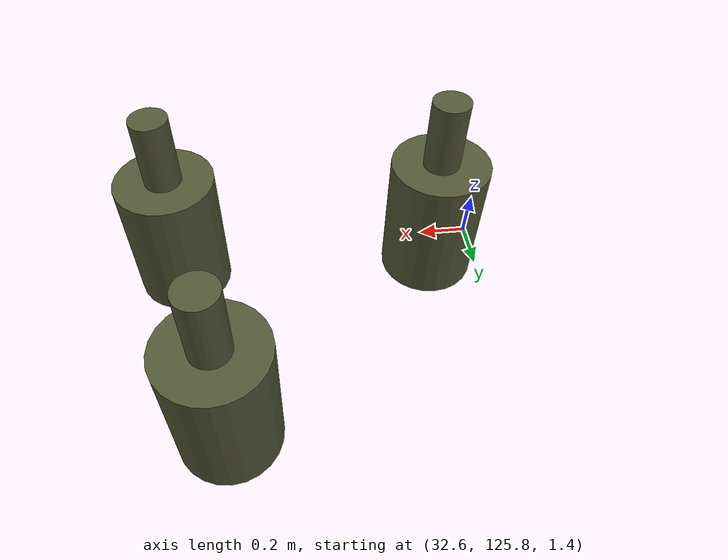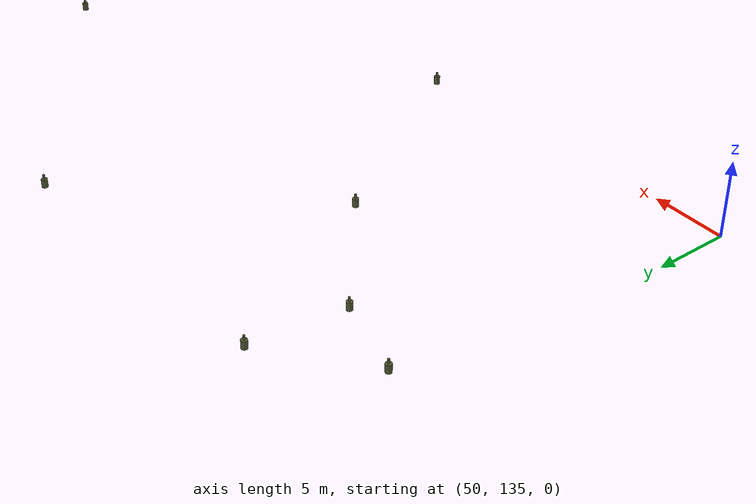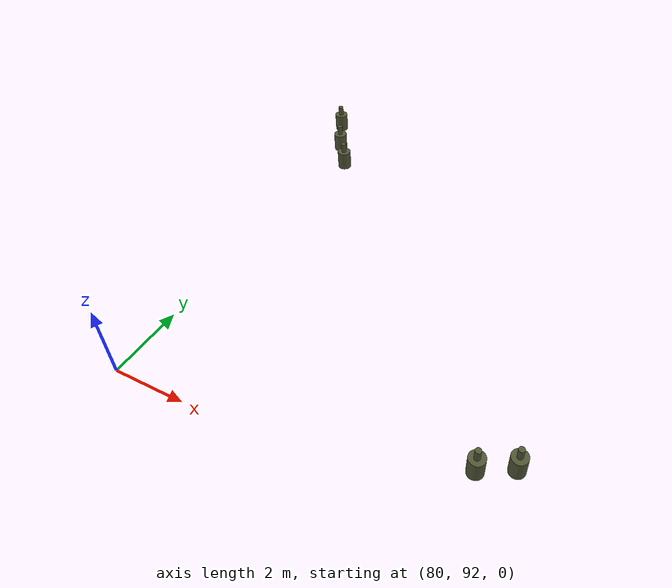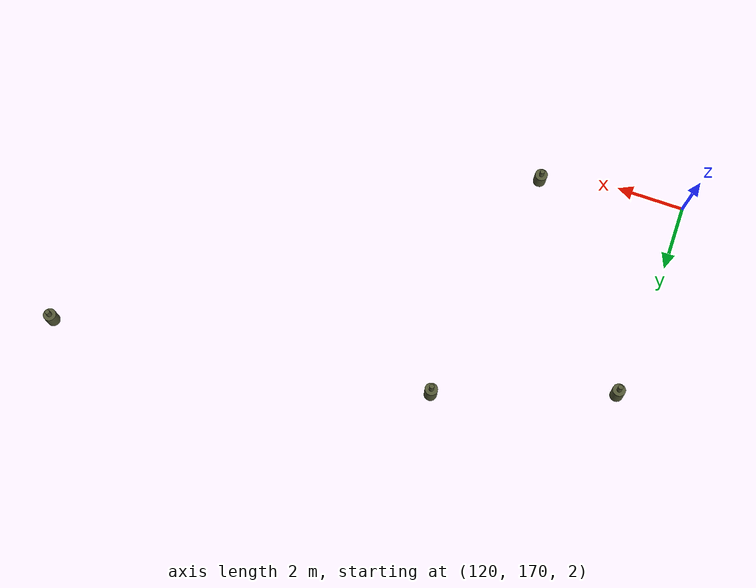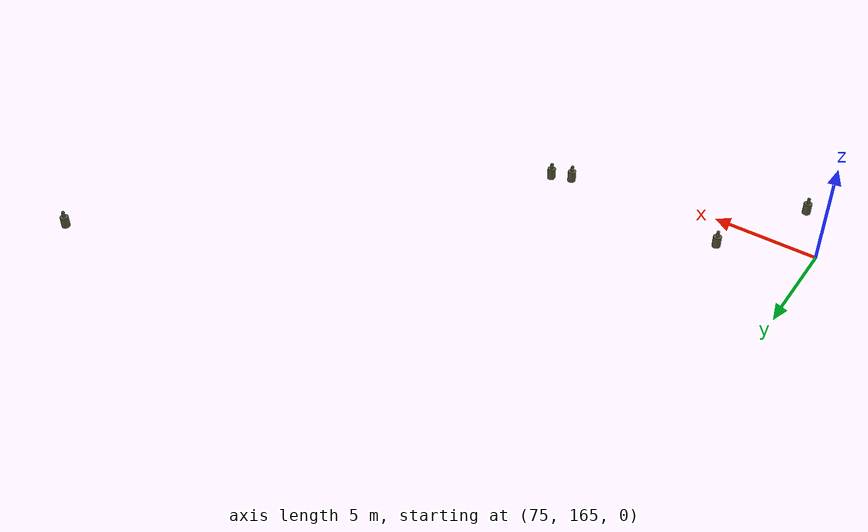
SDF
<sdf version="1.7">
 <world name="default">
  <light name="sun" type="directional">
   <pose>0 0 10 0 -0 0</pose>
   <diffuse>0.8 0.8 0.8 1</diffuse>
   <specular>0.2 0.2 0.2 1</specular>
   <attenuation>
    <range>1000</range>
    <constant>0.9</constant>
    <linear>0.01</linear>
    <quadratic>0.001</quadratic>
   </attenuation>
   <direction>-0.5 0.1 -0.9</direction>
   <spot><inner_angle>0</inner_angle><outer_angle>0</outer_angle><falloff>0</falloff></spot>
  </light>
  <gravity>0 0 -9.8</gravity>
  <magnetic_field>6e-06 2.3e-05 -4.2e-05</magnetic_field>
  <atmosphere type="adiabatic"/>
  <physics type="ode">
   <max_step_size>0.001</max_step_size>
   <real_time_factor>1</real_time_factor>
   <real_time_update_rate>1000</real_time_update_rate>
  </physics>
  <scene><ambient>0.4 0.4 0.4 1</ambient><background>0.7 0.7 0.7 1</background><shadows>0</shadows></scene>
  <spherical_coordinates>
   <surface_model>EARTH_WGS84</surface_model>
   <latitude_deg>46.339159</latitude_deg>
   <longitude_deg>3.433923</longitude_deg>
   <elevation>279.18</elevation>
   <heading_deg>180</heading_deg>
  </spherical_coordinates>
  <model name="obstacle_iso18497">
   <pose>145.018 84.1908 -0.295742 0.011009 0.021463 0.000145</pose>
   <static>1</static>
   <link name="link">
    <visual name="body">
     <pose>0 0 0.265 0 -0 0</pose>
     <geometry><cylinder><radius>0.19</radius><length>0.53</length></cylinder></geometry>
     <material><ambient>0.322 0.341 0.208 1</ambient><diffuse>0.322 0.341 0.208 1</diffuse></material>
    </visual>
    <visual name="head">
     <pose>0 0 0.665 0 -0 0</pose>
     <geometry><cylinder><radius>0.07</radius><length>0.27</length></cylinder></geometry>
     <material><ambient>0.322 0.341 0.208 1</ambient><diffuse>0.322 0.341 0.208 1</diffuse></material>
    </visual>
    <collision name="body_col">
     <pose>0 0 0.265 0 -0 0</pose>
     <geometry><cylinder><radius>0.19</radius><length>0.53</length></cylinder></geometry>
     <surface><contact><collide_without_contact>0</collide_without_contact></contact></surface>
    </collision>
    <collision name="head_col">
     <pose>0 0 0.665 0 -0 0</pose>
     <geometry><cylinder><radius>0.07</radius><length>0.27</length></cylinder></geometry>
     <surface><contact><collide_without_contact>0</collide_without_contact></contact></surface>
    </collision>
    <inertial>
     <mass>40</mass>
     <inertia><ixx>1</ixx><ixy>0</ixy><ixz>0</ixz><iyy>1</iyy><iyz>0</iyz><izz>1</izz></inertia>
    </inertial>
   </link>
  </model>
  <model name="obstacle_iso18497_clone_clone">
   <pose>123.641 80.2199 -0.014469 0.001528 0.043881 0.001737</pose>
   <static>1</static>
   <link name="link">
    <visual name="body">
     <pose>0 0 0.265 0 -0 0</pose>
     <geometry><cylinder><radius>0.19</radius><length>0.53</length></cylinder></geometry>
     <material><ambient>0.322 0.341 0.208 1</ambient><diffuse>0.322 0.341 0.208 1</diffuse></material>
    </visual>
    <visual name="head">
     <pose>0 0 0.665 0 -0 0</pose>
     <geometry><cylinder><radius>0.07</radius><length>0.27</length></cylinder></geometry>
     <material><ambient>0.322 0.341 0.208 1</ambient><diffuse>0.322 0.341 0.208 1</diffuse></material>
    </visual>
    <collision name="body_col">
     <pose>0 0 0.265 0 -0 0</pose>
     <geometry><cylinder><radius>0.19</radius><length>0.53</length></cylinder></geometry>
     <surface><contact><collide_without_contact>0</collide_without_contact></contact></surface>
    </collision>
    <collision name="head_col">
     <pose>0 0 0.665 0 -0 0</pose>
     <geometry><cylinder><radius>0.07</radius><length>0.27</length></cylinder></geometry>
     <surface><contact><collide_without_contact>0</collide_without_contact></contact></surface>
    </collision>
    <inertial>
     <mass>40</mass>
     <inertia><ixx>1</ixx><ixy>0</ixy><ixz>0</ixz><iyy>1</iyy><iyz>0</iyz><izz>1</izz></inertia>
    </inertial>
   </link>
  </model>
  <model name="obstacle_iso18497_clone_clone_0">
   <pose>117.52 93.8356 0.237765 0.012519 0.014392 6.7e-05</pose>
   <static>1</static>
   <link name="link">
    <visual name="body">
     <pose>0 0 0.265 0 -0 0</pose>
     <geometry><cylinder><radius>0.19</radius><length>0.53</length></cylinder></geometry>
     <material><ambient>0.322 0.341 0.208 1</ambient><diffuse>0.322 0.341 0.208 1</diffuse></material>
    </visual>
    <visual name="head">
     <pose>0 0 0.665 0 -0 0</pose>
     <geometry><cylinder><radius>0.07</radius><length>0.27</length></cylinder></geometry>
     <material><ambient>0.322 0.341 0.208 1</ambient><diffuse>0.322 0.341 0.208 1</diffuse></material>
    </visual>
    <collision name="body_col">
     <pose>0 0 0.265 0 -0 0</pose>
     <geometry><cylinder><radius>0.19</radius><length>0.53</length></cylinder></geometry>
     <surface><contact><collide_without_contact>0</collide_without_contact></contact></surface>
    </collision>
    <collision name="head_col">
     <pose>0 0 0.665 0 -0 0</pose>
     <geometry><cylinder><radius>0.07</radius><length>0.27</length></cylinder></geometry>
     <surface><contact><collide_without_contact>0</collide_without_contact></contact></surface>
    </collision>
    <inertial>
     <mass>40</mass>
     <inertia><ixx>1</ixx><ixy>0</ixy><ixz>0</ixz><iyy>1</iyy><iyz>0</iyz><izz>1</izz></inertia>
    </inertial>
   </link>
  </model>
  <model name="obstacle_iso18497_clone_clone_0_clone">
   <pose>111.009 99.3502 0.400379 0.012475 0.014392 9.5e-05</pose>
   <static>1</static>
   <link name="link">
    <visual name="body">
     <pose>0 0 0.265 0 -0 0</pose>
     <geometry><cylinder><radius>0.19</radius><length>0.53</length></cylinder></geometry>
     <material><ambient>0.322 0.341 0.208 1</ambient><diffuse>0.322 0.341 0.208 1</diffuse></material>
    </visual>
    <visual name="head">
     <pose>0 0 0.665 0 -0 0</pose>
     <geometry><cylinder><radius>0.07</radius><length>0.27</length></cylinder></geometry>
     <material><ambient>0.322 0.341 0.208 1</ambient><diffuse>0.322 0.341 0.208 1</diffuse></material>
    </visual>
    <collision name="body_col">
     <pose>0 0 0.265 0 -0 0</pose>
     <geometry><cylinder><radius>0.19</radius><length>0.53</length></cylinder></geometry>
     <surface><contact><collide_without_contact>0</collide_without_contact></contact></surface>
    </collision>
    <collision name="head_col">
     <pose>0 0 0.665 0 -0 0</pose>
     <geometry><cylinder><radius>0.07</radius><length>0.27</length></cylinder></geometry>
     <surface><contact><collide_without_contact>0</collide_without_contact></contact></surface>
    </collision>
    <inertial>
     <mass>40</mass>
     <inertia><ixx>1</ixx><ixy>0</ixy><ixz>0</ixz><iyy>1</iyy><iyz>0</iyz><izz>1</izz></inertia>
    </inertial>
   </link>
  </model>
  <model name="obstacle_iso18497_clone_clone_clone">
   <pose>117.68 71.7303 -0.040745 0.012492 0.014394 0.000324</pose>
   <static>1</static>
   <link name="link">
    <visual name="body">
     <pose>0 0 0.265 0 -0 0</pose>
     <geometry><cylinder><radius>0.19</radius><length>0.53</length></cylinder></geometry>
     <material><ambient>0.322 0.341 0.208 1</ambient><diffuse>0.322 0.341 0.208 1</diffuse></material>
    </visual>
    <visual name="head">
     <pose>0 0 0.665 0 -0 0</pose>
     <geometry><cylinder><radius>0.07</radius><length>0.27</length></cylinder></geometry>
     <material><ambient>0.322 0.341 0.208 1</ambient><diffuse>0.322 0.341 0.208 1</diffuse></material>
    </visual>
    <collision name="body_col">
     <pose>0 0 0.265 0 -0 0</pose>
     <geometry><cylinder><radius>0.19</radius><length>0.53</length></cylinder></geometry>
     <surface><contact><collide_without_contact>0</collide_without_contact></contact></surface>
    </collision>
    <collision name="head_col">
     <pose>0 0 0.665 0 -0 0</pose>
     <geometry><cylinder><radius>0.07</radius><length>0.27</length></cylinder></geometry>
     <surface><contact><collide_without_contact>0</collide_without_contact></contact></surface>
    </collision>
    <inertial>
     <mass>40</mass>
     <inertia><ixx>1</ixx><ixy>0</ixy><ixz>0</ixz><iyy>1</iyy><iyz>0</iyz><izz>1</izz></inertia>
    </inertial>
   </link>
  </model>
  <audio><device>default</device></audio>
  <model name="obstacle_iso18497_1">
   <pose>91.0945 80.0461 0.445781 0.01251 0.014408 9.3e-05</pose>
   <static>1</static>
   <link name="link">
    <visual name="body">
     <pose>0 0 0.265 0 -0 0</pose>
     <geometry><cylinder><radius>0.19</radius><length>0.53</length></cylinder></geometry>
     <material><ambient>0.322 0.341 0.208 1</ambient><diffuse>0.322 0.341 0.208 1</diffuse></material>
    </visual>
    <visual name="head">
     <pose>0 0 0.665 0 -0 0</pose>
     <geometry><cylinder><radius>0.07</radius><length>0.27</length></cylinder></geometry>
     <material><ambient>0.322 0.341 0.208 1</ambient><diffuse>0.322 0.341 0.208 1</diffuse></material>
    </visual>
    <collision name="body_col">
     <pose>0 0 0.265 0 -0 0</pose>
     <geometry><cylinder><radius>0.19</radius><length>0.53</length></cylinder></geometry>
     <surface><contact><collide_without_contact>0</collide_without_contact></contact></surface>
    </collision>
    <collision name="head_col">
     <pose>0 0 0.665 0 -0 0</pose>
     <geometry><cylinder><radius>0.07</radius><length>0.27</length></cylinder></geometry>
     <surface><contact><collide_without_contact>0</collide_without_contact></contact></surface>
    </collision>
    <inertial>
     <mass>40</mass>
     <inertia><ixx>1</ixx><ixy>0</ixy><ixz>0</ixz><iyy>1</iyy><iyz>0</iyz><izz>1</izz></inertia>
    </inertial>
   </link>
  </model>
  <model name="obstacle_iso18497_2">
   <pose>88.7111 93.0475 0.642533 0.012479 0.014374 9.2e-05</pose>
   <static>1</static>
   <link name="link">
    <visual name="body">
     <pose>0 0 0.265 0 -0 0</pose>
     <geometry><cylinder><radius>0.19</radius><length>0.53</length></cylinder></geometry>
     <material><ambient>0.322 0.341 0.208 1</ambient><diffuse>0.322 0.341 0.208 1</diffuse></material>
    </visual>
    <visual name="head">
     <pose>0 0 0.665 0 -0 0</pose>
     <geometry><cylinder><radius>0.07</radius><length>0.27</length></cylinder></geometry>
     <material><ambient>0.322 0.341 0.208 1</ambient><diffuse>0.322 0.341 0.208 1</diffuse></material>
    </visual>
    <collision name="body_col">
     <pose>0 0 0.265 0 -0 0</pose>
     <geometry><cylinder><radius>0.19</radius><length>0.53</length></cylinder></geometry>
     <surface><contact><collide_without_contact>0</collide_without_contact></contact></surface>
    </collision>
    <collision name="head_col">
     <pose>0 0 0.665 0 -0 0</pose>
     <geometry><cylinder><radius>0.07</radius><length>0.27</length></cylinder></geometry>
     <surface><contact><collide_without_contact>0</collide_without_contact></contact></surface>
    </collision>
    <inertial>
     <mass>40</mass>
     <inertia><ixx>1</ixx><ixy>0</ixy><ixz>0</ixz><iyy>1</iyy><iyz>0</iyz><izz>1</izz></inertia>
    </inertial>
   </link>
  </model>
  <model name="obstacle_iso18497_2_clone">
   <pose>89.4425 93.4523 0.637066 0.01248 0.014371 9.2e-05</pose>
   <static>1</static>
   <link name="link">
    <visual name="body">
     <pose>0 0 0.265 0 -0 0</pose>
     <geometry><cylinder><radius>0.19</radius><length>0.53</length></cylinder></geometry>
     <material><ambient>0.322 0.341 0.208 1</ambient><diffuse>0.322 0.341 0.208 1</diffuse></material>
    </visual>
    <visual name="head">
     <pose>0 0 0.665 0 -0 0</pose>
     <geometry><cylinder><radius>0.07</radius><length>0.27</length></cylinder></geometry>
     <material><ambient>0.322 0.341 0.208 1</ambient><diffuse>0.322 0.341 0.208 1</diffuse></material>
    </visual>
    <collision name="body_col">
     <pose>0 0 0.265 0 -0 0</pose>
     <geometry><cylinder><radius>0.19</radius><length>0.53</length></cylinder></geometry>
     <surface><contact><collide_without_contact>0</collide_without_contact></contact></surface>
    </collision>
    <collision name="head_col">
     <pose>0 0 0.665 0 -0 0</pose>
     <geometry><cylinder><radius>0.07</radius><length>0.27</length></cylinder></geometry>
     <surface><contact><collide_without_contact>0</collide_without_contact></contact></surface>
    </collision>
    <inertial>
     <mass>40</mass>
     <inertia><ixx>1</ixx><ixy>0</ixy><ixz>0</ixz><iyy>1</iyy><iyz>0</iyz><izz>1</izz></inertia>
    </inertial>
   </link>
  </model>
  <model name="obstacle_iso18497_3">
   <pose>81.1317 100.818 0.811121 0.007073 0.010742 4.4e-05</pose>
   <static>1</static>
   <link name="link">
    <visual name="body">
     <pose>0 0 0.265 0 -0 0</pose>
     <geometry><cylinder><radius>0.19</radius><length>0.53</length></cylinder></geometry>
     <material><ambient>0.322 0.341 0.208 1</ambient><diffuse>0.322 0.341 0.208 1</diffuse></material>
    </visual>
    <visual name="head">
     <pose>0 0 0.665 0 -0 0</pose>
     <geometry><cylinder><radius>0.07</radius><length>0.27</length></cylinder></geometry>
     <material><ambient>0.322 0.341 0.208 1</ambient><diffuse>0.322 0.341 0.208 1</diffuse></material>
    </visual>
    <collision name="body_col">
     <pose>0 0 0.265 0 -0 0</pose>
     <geometry><cylinder><radius>0.19</radius><length>0.53</length></cylinder></geometry>
     <surface><contact><collide_without_contact>0</collide_without_contact></contact></surface>
    </collision>
    <collision name="head_col">
     <pose>0 0 0.665 0 -0 0</pose>
     <geometry><cylinder><radius>0.07</radius><length>0.27</length></cylinder></geometry>
     <surface><contact><collide_without_contact>0</collide_without_contact></contact></surface>
    </collision>
    <inertial>
     <mass>40</mass>
     <inertia><ixx>1</ixx><ixy>0</ixy><ixz>0</ixz><iyy>1</iyy><iyz>0</iyz><izz>1</izz></inertia>
    </inertial>
   </link>
  </model>
  <model name="obstacle_iso18497_2_clone_0">
   <pose>80.5258 101.613 0.823252 0.007048 0.010754 7e-05</pose>
   <static>1</static>
   <link name="link">
    <visual name="body">
     <pose>0 0 0.265 0 -0 0</pose>
     <geometry><cylinder><radius>0.19</radius><length>0.53</length></cylinder></geometry>
     <material><ambient>0.322 0.341 0.208 1</ambient><diffuse>0.322 0.341 0.208 1</diffuse></material>
    </visual>
    <visual name="head">
     <pose>0 0 0.665 0 -0 0</pose>
     <geometry><cylinder><radius>0.07</radius><length>0.27</length></cylinder></geometry>
     <material><ambient>0.322 0.341 0.208 1</ambient><diffuse>0.322 0.341 0.208 1</diffuse></material>
    </visual>
    <collision name="body_col">
     <pose>0 0 0.265 0 -0 0</pose>
     <geometry><cylinder><radius>0.19</radius><length>0.53</length></cylinder></geometry>
     <surface><contact><collide_without_contact>0</collide_without_contact></contact></surface>
    </collision>
    <collision name="head_col">
     <pose>0 0 0.665 0 -0 0</pose>
     <geometry><cylinder><radius>0.07</radius><length>0.27</length></cylinder></geometry>
     <surface><contact><collide_without_contact>0</collide_without_contact></contact></surface>
    </collision>
    <inertial>
     <mass>40</mass>
     <inertia><ixx>1</ixx><ixy>0</ixy><ixz>0</ixz><iyy>1</iyy><iyz>0</iyz><izz>1</izz></inertia>
    </inertial>
   </link>
  </model>
  <model name="obstacle_iso18497_2_clone_1">
   <pose>79.9503 102.64 0.836668 0.007076 0.01076 8.7e-05</pose>
   <static>1</static>
   <link name="link">
    <visual name="body">
     <pose>0 0 0.265 0 -0 0</pose>
     <geometry><cylinder><radius>0.19</radius><length>0.53</length></cylinder></geometry>
     <material><ambient>0.322 0.341 0.208 1</ambient><diffuse>0.322 0.341 0.208 1</diffuse></material>
    </visual>
    <visual name="head">
     <pose>0 0 0.665 0 -0 0</pose>
     <geometry><cylinder><radius>0.07</radius><length>0.27</length></cylinder></geometry>
     <material><ambient>0.322 0.341 0.208 1</ambient><diffuse>0.322 0.341 0.208 1</diffuse></material>
    </visual>
    <collision name="body_col">
     <pose>0 0 0.265 0 -0 0</pose>
     <geometry><cylinder><radius>0.19</radius><length>0.53</length></cylinder></geometry>
     <surface><contact><collide_without_contact>0</collide_without_contact></contact></surface>
    </collision>
    <collision name="head_col">
     <pose>0 0 0.665 0 -0 0</pose>
     <geometry><cylinder><radius>0.07</radius><length>0.27</length></cylinder></geometry>
     <surface><contact><collide_without_contact>0</collide_without_contact></contact></surface>
    </collision>
    <inertial>
     <mass>40</mass>
     <inertia><ixx>1</ixx><ixy>0</ixy><ixz>0</ixz><iyy>1</iyy><iyz>0</iyz><izz>1</izz></inertia>
    </inertial>
   </link>
  </model>
  <model name="obstacle_iso18497_3_clone">
   <pose>79.6507 119.081 0.955867 0.007067 0.010763 3.3e-05</pose>
   <static>1</static>
   <link name="link">
    <visual name="body">
     <pose>0 0 0.265 0 -0 0</pose>
     <geometry><cylinder><radius>0.19</radius><length>0.53</length></cylinder></geometry>
     <material><ambient>0.322 0.341 0.208 1</ambient><diffuse>0.322 0.341 0.208 1</diffuse></material>
    </visual>
    <visual name="head">
     <pose>0 0 0.665 0 -0 0</pose>
     <geometry><cylinder><radius>0.07</radius><length>0.27</length></cylinder></geometry>
     <material><ambient>0.322 0.341 0.208 1</ambient><diffuse>0.322 0.341 0.208 1</diffuse></material>
    </visual>
    <collision name="body_col">
     <pose>0 0 0.265 0 -0 0</pose>
     <geometry><cylinder><radius>0.19</radius><length>0.53</length></cylinder></geometry>
     <surface><contact><collide_without_contact>0</collide_without_contact></contact></surface>
    </collision>
    <collision name="head_col">
     <pose>0 0 0.665 0 -0 0</pose>
     <geometry><cylinder><radius>0.07</radius><length>0.27</length></cylinder></geometry>
     <surface><contact><collide_without_contact>0</collide_without_contact></contact></surface>
    </collision>
    <inertial>
     <mass>40</mass>
     <inertia><ixx>1</ixx><ixy>0</ixy><ixz>0</ixz><iyy>1</iyy><iyz>0</iyz><izz>1</izz></inertia>
    </inertial>
   </link>
  </model>
  <model name="obstacle_iso18497_4">
   <pose>63.5249 150.854 1.40466 0.011558 0.007562 2.6e-05</pose>
   <static>1</static>
   <link name="link">
    <visual name="body">
     <pose>0 0 0.265 0 -0 0</pose>
     <geometry><cylinder><radius>0.19</radius><length>0.53</length></cylinder></geometry>
     <material><ambient>0.322 0.341 0.208 1</ambient><diffuse>0.322 0.341 0.208 1</diffuse></material>
    </visual>
    <visual name="head">
     <pose>0 0 0.665 0 -0 0</pose>
     <geometry><cylinder><radius>0.07</radius><length>0.27</length></cylinder></geometry>
     <material><ambient>0.322 0.341 0.208 1</ambient><diffuse>0.322 0.341 0.208 1</diffuse></material>
    </visual>
    <collision name="body_col">
     <pose>0 0 0.265 0 -0 0</pose>
     <geometry><cylinder><radius>0.19</radius><length>0.53</length></cylinder></geometry>
     <surface><contact><collide_without_contact>0</collide_without_contact></contact></surface>
    </collision>
    <collision name="head_col">
     <pose>0 0 0.665 0 -0 0</pose>
     <geometry><cylinder><radius>0.07</radius><length>0.27</length></cylinder></geometry>
     <surface><contact><collide_without_contact>0</collide_without_contact></contact></surface>
    </collision>
    <inertial>
     <mass>40</mass>
     <inertia><ixx>1</ixx><ixy>0</ixy><ixz>0</ixz><iyy>1</iyy><iyz>0</iyz><izz>1</izz></inertia>
    </inertial>
   </link>
  </model>
  <model name="obstacle_iso18497_5">
   <pose>50.8044 158.442 1.58835 0.011542 0.007546 3.8e-05</pose>
   <static>1</static>
   <link name="link">
    <visual name="body">
     <pose>0 0 0.265 0 -0 0</pose>
     <geometry><cylinder><radius>0.19</radius><length>0.53</length></cylinder></geometry>
     <material><ambient>0.322 0.341 0.208 1</ambient><diffuse>0.322 0.341 0.208 1</diffuse></material>
    </visual>
    <visual name="head">
     <pose>0 0 0.665 0 -0 0</pose>
     <geometry><cylinder><radius>0.07</radius><length>0.27</length></cylinder></geometry>
     <material><ambient>0.322 0.341 0.208 1</ambient><diffuse>0.322 0.341 0.208 1</diffuse></material>
    </visual>
    <collision name="body_col">
     <pose>0 0 0.265 0 -0 0</pose>
     <geometry><cylinder><radius>0.19</radius><length>0.53</length></cylinder></geometry>
     <surface><contact><collide_without_contact>0</collide_without_contact></contact></surface>
    </collision>
    <collision name="head_col">
     <pose>0 0 0.665 0 -0 0</pose>
     <geometry><cylinder><radius>0.07</radius><length>0.27</length></cylinder></geometry>
     <surface><contact><collide_without_contact>0</collide_without_contact></contact></surface>
    </collision>
    <inertial>
     <mass>40</mass>
     <inertia><ixx>1</ixx><ixy>0</ixy><ixz>0</ixz><iyy>1</iyy><iyz>0</iyz><izz>1</izz></inertia>
    </inertial>
   </link>
  </model>
  <model name="obstacle_iso18497_5_clone">
   <pose>55.9224 156.97 1.53271 0.011532 0.007535 3.8e-05</pose>
   <static>1</static>
   <link name="link">
    <visual name="body">
     <pose>0 0 0.265 0 -0 0</pose>
     <geometry><cylinder><radius>0.19</radius><length>0.53</length></cylinder></geometry>
     <material><ambient>0.322 0.341 0.208 1</ambient><diffuse>0.322 0.341 0.208 1</diffuse></material>
    </visual>
    <visual name="head">
     <pose>0 0 0.665 0 -0 0</pose>
     <geometry><cylinder><radius>0.07</radius><length>0.27</length></cylinder></geometry>
     <material><ambient>0.322 0.341 0.208 1</ambient><diffuse>0.322 0.341 0.208 1</diffuse></material>
    </visual>
    <collision name="body_col">
     <pose>0 0 0.265 0 -0 0</pose>
     <geometry><cylinder><radius>0.19</radius><length>0.53</length></cylinder></geometry>
     <surface><contact><collide_without_contact>0</collide_without_contact></contact></surface>
    </collision>
    <collision name="head_col">
     <pose>0 0 0.665 0 -0 0</pose>
     <geometry><cylinder><radius>0.07</radius><length>0.27</length></cylinder></geometry>
     <surface><contact><collide_without_contact>0</collide_without_contact></contact></surface>
    </collision>
    <inertial>
     <mass>40</mass>
     <inertia><ixx>1</ixx><ixy>0</ixy><ixz>0</ixz><iyy>1</iyy><iyz>0</iyz><izz>1</izz></inertia>
    </inertial>
   </link>
  </model>
  <model name="obstacle_iso18497_5_clone_0">
   <pose>56.5508 162.95 1.59703 0.011559 0.007559 3.9e-05</pose>
   <static>1</static>
   <link name="link">
    <visual name="body">
     <pose>0 0 0.265 0 -0 0</pose>
     <geometry><cylinder><radius>0.19</radius><length>0.53</length></cylinder></geometry>
     <material><ambient>0.322 0.341 0.208 1</ambient><diffuse>0.322 0.341 0.208 1</diffuse></material>
    </visual>
    <visual name="head">
     <pose>0 0 0.665 0 -0 0</pose>
     <geometry><cylinder><radius>0.07</radius><length>0.27</length></cylinder></geometry>
     <material><ambient>0.322 0.341 0.208 1</ambient><diffuse>0.322 0.341 0.208 1</diffuse></material>
    </visual>
    <collision name="body_col">
     <pose>0 0 0.265 0 -0 0</pose>
     <geometry><cylinder><radius>0.19</radius><length>0.53</length></cylinder></geometry>
     <surface><contact><collide_without_contact>0</collide_without_contact></contact></surface>
    </collision>
    <collision name="head_col">
     <pose>0 0 0.665 0 -0 0</pose>
     <geometry><cylinder><radius>0.07</radius><length>0.27</length></cylinder></geometry>
     <surface><contact><collide_without_contact>0</collide_without_contact></contact></surface>
    </collision>
    <inertial>
     <mass>40</mass>
     <inertia><ixx>1</ixx><ixy>0</ixy><ixz>0</ixz><iyy>1</iyy><iyz>0</iyz><izz>1</izz></inertia>
    </inertial>
   </link>
  </model>
  <model name="obstacle_iso18497_5_clone_1">
   <pose>76.1657 163.945 1.44093 0.011517 0.009393 7e-05</pose>
   <static>1</static>
   <link name="link">
    <visual name="body">
     <pose>0 0 0.265 0 -0 0</pose>
     <geometry><cylinder><radius>0.19</radius><length>0.53</length></cylinder></geometry>
     <material><ambient>0.322 0.341 0.208 1</ambient><diffuse>0.322 0.341 0.208 1</diffuse></material>
    </visual>
    <visual name="head">
     <pose>0 0 0.665 0 -0 0</pose>
     <geometry><cylinder><radius>0.07</radius><length>0.27</length></cylinder></geometry>
     <material><ambient>0.322 0.341 0.208 1</ambient><diffuse>0.322 0.341 0.208 1</diffuse></material>
    </visual>
    <collision name="body_col">
     <pose>0 0 0.265 0 -0 0</pose>
     <geometry><cylinder><radius>0.19</radius><length>0.53</length></cylinder></geometry>
     <surface><contact><collide_without_contact>0</collide_without_contact></contact></surface>
    </collision>
    <collision name="head_col">
     <pose>0 0 0.665 0 -0 0</pose>
     <geometry><cylinder><radius>0.07</radius><length>0.27</length></cylinder></geometry>
     <surface><contact><collide_without_contact>0</collide_without_contact></contact></surface>
    </collision>
    <inertial>
     <mass>40</mass>
     <inertia><ixx>1</ixx><ixy>0</ixy><ixz>0</ixz><iyy>1</iyy><iyz>0</iyz><izz>1</izz></inertia>
    </inertial>
   </link>
  </model>
  <model name="obstacle_iso18497_5_clone_1_clone">
   <pose>78.5617 168.566 1.47169 0.011505 0.009393 7.3e-05</pose>
   <static>1</static>
   <link name="link">
    <visual name="body">
     <pose>0 0 0.265 0 -0 0</pose>
     <geometry><cylinder><radius>0.19</radius><length>0.53</length></cylinder></geometry>
     <material><ambient>0.322 0.341 0.208 1</ambient><diffuse>0.322 0.341 0.208 1</diffuse></material>
    </visual>
    <visual name="head">
     <pose>0 0 0.665 0 -0 0</pose>
     <geometry><cylinder><radius>0.07</radius><length>0.27</length></cylinder></geometry>
     <material><ambient>0.322 0.341 0.208 1</ambient><diffuse>0.322 0.341 0.208 1</diffuse></material>
    </visual>
    <collision name="body_col">
     <pose>0 0 0.265 0 -0 0</pose>
     <geometry><cylinder><radius>0.19</radius><length>0.53</length></cylinder></geometry>
     <surface><contact><collide_without_contact>0</collide_without_contact></contact></surface>
    </collision>
    <collision name="head_col">
     <pose>0 0 0.665 0 -0 0</pose>
     <geometry><cylinder><radius>0.07</radius><length>0.27</length></cylinder></geometry>
     <surface><contact><collide_without_contact>0</collide_without_contact></contact></surface>
    </collision>
    <inertial>
     <mass>40</mass>
     <inertia><ixx>1</ixx><ixy>0</ixy><ixz>0</ixz><iyy>1</iyy><iyz>0</iyz><izz>1</izz></inertia>
    </inertial>
   </link>
  </model>
  <model name="obstacle_iso18497_5_clone_1_clone_clone">
   <pose>86.3441 167.926 1.39139 0.011506 0.009392 8.3e-05</pose>
   <static>1</static>
   <link name="link">
    <visual name="body">
     <pose>0 0 0.265 0 -0 0</pose>
     <geometry><cylinder><radius>0.19</radius><length>0.53</length></cylinder></geometry>
     <material><ambient>0.322 0.341 0.208 1</ambient><diffuse>0.322 0.341 0.208 1</diffuse></material>
    </visual>
    <visual name="head">
     <pose>0 0 0.665 0 -0 0</pose>
     <geometry><cylinder><radius>0.07</radius><length>0.27</length></cylinder></geometry>
     <material><ambient>0.322 0.341 0.208 1</ambient><diffuse>0.322 0.341 0.208 1</diffuse></material>
    </visual>
    <collision name="body_col">
     <pose>0 0 0.265 0 -0 0</pose>
     <geometry><cylinder><radius>0.19</radius><length>0.53</length></cylinder></geometry>
     <surface><contact><collide_without_contact>0</collide_without_contact></contact></surface>
    </collision>
    <collision name="head_col">
     <pose>0 0 0.665 0 -0 0</pose>
     <geometry><cylinder><radius>0.07</radius><length>0.27</length></cylinder></geometry>
     <surface><contact><collide_without_contact>0</collide_without_contact></contact></surface>
    </collision>
    <inertial>
     <mass>40</mass>
     <inertia><ixx>1</ixx><ixy>0</ixy><ixz>0</ixz><iyy>1</iyy><iyz>0</iyz><izz>1</izz></inertia>
    </inertial>
   </link>
  </model>
  <model name="obstacle_iso18497_5_clone_1_clone_clone_0">
   <pose>87.2539 168.288 1.38702 0.011515 0.009369 0.000103</pose>
   <static>1</static>
   <link name="link">
    <visual name="body">
     <pose>0 0 0.265 0 -0 0</pose>
     <geometry><cylinder><radius>0.19</radius><length>0.53</length></cylinder></geometry>
     <material><ambient>0.322 0.341 0.208 1</ambient><diffuse>0.322 0.341 0.208 1</diffuse></material>
    </visual>
    <visual name="head">
     <pose>0 0 0.665 0 -0 0</pose>
     <geometry><cylinder><radius>0.07</radius><length>0.27</length></cylinder></geometry>
     <material><ambient>0.322 0.341 0.208 1</ambient><diffuse>0.322 0.341 0.208 1</diffuse></material>
    </visual>
    <collision name="body_col">
     <pose>0 0 0.265 0 -0 0</pose>
     <geometry><cylinder><radius>0.19</radius><length>0.53</length></cylinder></geometry>
     <surface><contact><collide_without_contact>0</collide_without_contact></contact></surface>
    </collision>
    <collision name="head_col">
     <pose>0 0 0.665 0 -0 0</pose>
     <geometry><cylinder><radius>0.07</radius><length>0.27</length></cylinder></geometry>
     <surface><contact><collide_without_contact>0</collide_without_contact></contact></surface>
    </collision>
    <inertial>
     <mass>40</mass>
     <inertia><ixx>1</ixx><ixy>0</ixy><ixz>0</ixz><iyy>1</iyy><iyz>0</iyz><izz>1</izz></inertia>
    </inertial>
   </link>
  </model>
  <model name="obstacle_iso18497_6">
   <pose>103.478 184.192 1.41816 0.011522 0.009374 4.3e-05</pose>
   <static>1</static>
   <link name="link">
    <visual name="body">
     <pose>0 0 0.265 0 -0 0</pose>
     <geometry><cylinder><radius>0.19</radius><length>0.53</length></cylinder></geometry>
     <material><ambient>0.322 0.341 0.208 1</ambient><diffuse>0.322 0.341 0.208 1</diffuse></material>
    </visual>
    <visual name="head">
     <pose>0 0 0.665 0 -0 0</pose>
     <geometry><cylinder><radius>0.07</radius><length>0.27</length></cylinder></geometry>
     <material><ambient>0.322 0.341 0.208 1</ambient><diffuse>0.322 0.341 0.208 1</diffuse></material>
    </visual>
    <collision name="body_col">
     <pose>0 0 0.265 0 -0 0</pose>
     <geometry><cylinder><radius>0.19</radius><length>0.53</length></cylinder></geometry>
     <surface><contact><collide_without_contact>0</collide_without_contact></contact></surface>
    </collision>
    <collision name="head_col">
     <pose>0 0 0.665 0 -0 0</pose>
     <geometry><cylinder><radius>0.07</radius><length>0.27</length></cylinder></geometry>
     <surface><contact><collide_without_contact>0</collide_without_contact></contact></surface>
    </collision>
    <inertial>
     <mass>40</mass>
     <inertia><ixx>1</ixx><ixy>0</ixy><ixz>0</ixz><iyy>1</iyy><iyz>0</iyz><izz>1</izz></inertia>
    </inertial>
   </link>
  </model>
  <model name="obstacle_iso18497_7">
   <pose>120.187 175.989 1.32194 0.064825 0.05767 -0.007905</pose>
   <static>1</static>
   <link name="link">
    <visual name="body">
     <pose>0 0 0.265 0 -0 0</pose>
     <geometry><cylinder><radius>0.19</radius><length>0.53</length></cylinder></geometry>
     <material><ambient>0.322 0.341 0.208 1</ambient><diffuse>0.322 0.341 0.208 1</diffuse></material>
    </visual>
    <visual name="head">
     <pose>0 0 0.665 0 -0 0</pose>
     <geometry><cylinder><radius>0.07</radius><length>0.27</length></cylinder></geometry>
     <material><ambient>0.322 0.341 0.208 1</ambient><diffuse>0.322 0.341 0.208 1</diffuse></material>
    </visual>
    <collision name="body_col">
     <pose>0 0 0.265 0 -0 0</pose>
     <geometry><cylinder><radius>0.19</radius><length>0.53</length></cylinder></geometry>
     <surface><contact><collide_without_contact>0</collide_without_contact></contact></surface>
    </collision>
    <collision name="head_col">
     <pose>0 0 0.665 0 -0 0</pose>
     <geometry><cylinder><radius>0.07</radius><length>0.27</length></cylinder></geometry>
     <surface><contact><collide_without_contact>0</collide_without_contact></contact></surface>
    </collision>
    <inertial>
     <mass>40</mass>
     <inertia><ixx>1</ixx><ixy>0</ixy><ixz>0</ixz><iyy>1</iyy><iyz>0</iyz><izz>1</izz></inertia>
    </inertial>
   </link>
  </model>
  <model name="obstacle_iso18497_7_clone">
   <pose>125.279 177.818 1.28404 0.074771 0.022457 0.011293</pose>
   <static>1</static>
   <link name="link">
    <visual name="body">
     <pose>0 0 0.265 0 -0 0</pose>
     <geometry><cylinder><radius>0.19</radius><length>0.53</length></cylinder></geometry>
     <material><ambient>0.322 0.341 0.208 1</ambient><diffuse>0.322 0.341 0.208 1</diffuse></material>
    </visual>
    <visual name="head">
     <pose>0 0 0.665 0 -0 0</pose>
     <geometry><cylinder><radius>0.07</radius><length>0.27</length></cylinder></geometry>
     <material><ambient>0.322 0.341 0.208 1</ambient><diffuse>0.322 0.341 0.208 1</diffuse></material>
    </visual>
    <collision name="body_col">
     <pose>0 0 0.265 0 -0 0</pose>
     <geometry><cylinder><radius>0.19</radius><length>0.53</length></cylinder></geometry>
     <surface><contact><collide_without_contact>0</collide_without_contact></contact></surface>
    </collision>
    <collision name="head_col">
     <pose>0 0 0.665 0 -0 0</pose>
     <geometry><cylinder><radius>0.07</radius><length>0.27</length></cylinder></geometry>
     <surface><contact><collide_without_contact>0</collide_without_contact></contact></surface>
    </collision>
    <inertial>
     <mass>40</mass>
     <inertia><ixx>1</ixx><ixy>0</ixy><ixz>0</ixz><iyy>1</iyy><iyz>0</iyz><izz>1</izz></inertia>
    </inertial>
   </link>
  </model>
  <model name="obstacle_iso18497_7_clone_0">
   <pose>124.31 170.235 1.23896 -0.042126 0.000988 -0.000531</pose>
   <static>1</static>
   <link name="link">
    <visual name="body">
     <pose>0 0 0.265 0 -0 0</pose>
     <geometry><cylinder><radius>0.19</radius><length>0.53</length></cylinder></geometry>
     <material><ambient>0.322 0.341 0.208 1</ambient><diffuse>0.322 0.341 0.208 1</diffuse></material>
    </visual>
    <visual name="head">
     <pose>0 0 0.665 0 -0 0</pose>
     <geometry><cylinder><radius>0.07</radius><length>0.27</length></cylinder></geometry>
     <material><ambient>0.322 0.341 0.208 1</ambient><diffuse>0.322 0.341 0.208 1</diffuse></material>
    </visual>
    <collision name="body_col">
     <pose>0 0 0.265 0 -0 0</pose>
     <geometry><cylinder><radius>0.19</radius><length>0.53</length></cylinder></geometry>
     <surface><contact><collide_without_contact>0</collide_without_contact></contact></surface>
    </collision>
    <collision name="head_col">
     <pose>0 0 0.665 0 -0 0</pose>
     <geometry><cylinder><radius>0.07</radius><length>0.27</length></cylinder></geometry>
     <surface><contact><collide_without_contact>0</collide_without_contact></contact></surface>
    </collision>
    <inertial>
     <mass>40</mass>
     <inertia><ixx>1</ixx><ixy>0</ixy><ixz>0</ixz><iyy>1</iyy><iyz>0</iyz><izz>1</izz></inertia>
    </inertial>
   </link>
  </model>
  <model name="obstacle_iso18497_7_clone_clone">
   <pose>136.639 179.496 1.05338 0.011598 0.009229 0.011817</pose>
   <static>1</static>
   <link name="link">
    <visual name="body">
     <pose>0 0 0.265 0 -0 0</pose>
     <geometry><cylinder><radius>0.19</radius><length>0.53</length></cylinder></geometry>
     <material><ambient>0.322 0.341 0.208 1</ambient><diffuse>0.322 0.341 0.208 1</diffuse></material>
    </visual>
    <visual name="head">
     <pose>0 0 0.665 0 -0 0</pose>
     <geometry><cylinder><radius>0.07</radius><length>0.27</length></cylinder></geometry>
     <material><ambient>0.322 0.341 0.208 1</ambient><diffuse>0.322 0.341 0.208 1</diffuse></material>
    </visual>
    <collision name="body_col">
     <pose>0 0 0.265 0 -0 0</pose>
     <geometry><cylinder><radius>0.19</radius><length>0.53</length></cylinder></geometry>
     <surface><contact><collide_without_contact>0</collide_without_contact></contact></surface>
    </collision>
    <collision name="head_col">
     <pose>0 0 0.665 0 -0 0</pose>
     <geometry><cylinder><radius>0.07</radius><length>0.27</length></cylinder></geometry>
     <surface><contact><collide_without_contact>0</collide_without_contact></contact></surface>
    </collision>
    <inertial>
     <mass>40</mass>
     <inertia><ixx>1</ixx><ixy>0</ixy><ixz>0</ixz><iyy>1</iyy><iyz>0</iyz><izz>1</izz></inertia>
    </inertial>
   </link>
  </model>
  <model name="obstacle_iso18497_8">
   <pose>107.226 152.981 1.01597 0.01271 0.009989 8.2e-05</pose>
   <static>1</static>
   <link name="link">
    <visual name="body">
     <pose>0 0 0.265 0 -0 0</pose>
     <geometry><cylinder><radius>0.19</radius><length>0.53</length></cylinder></geometry>
     <material><ambient>0.322 0.341 0.208 1</ambient><diffuse>0.322 0.341 0.208 1</diffuse></material>
    </visual>
    <visual name="head">
     <pose>0 0 0.665 0 -0 0</pose>
     <geometry><cylinder><radius>0.07</radius><length>0.27</length></cylinder></geometry>
     <material><ambient>0.322 0.341 0.208 1</ambient><diffuse>0.322 0.341 0.208 1</diffuse></material>
    </visual>
    <collision name="body_col">
     <pose>0 0 0.265 0 -0 0</pose>
     <geometry><cylinder><radius>0.19</radius><length>0.53</length></cylinder></geometry>
     <surface><contact><collide_without_contact>0</collide_without_contact></contact></surface>
    </collision>
    <collision name="head_col">
     <pose>0 0 0.665 0 -0 0</pose>
     <geometry><cylinder><radius>0.07</radius><length>0.27</length></cylinder></geometry>
     <surface><contact><collide_without_contact>0</collide_without_contact></contact></surface>
    </collision>
    <inertial>
     <mass>40</mass>
     <inertia><ixx>1</ixx><ixy>0</ixy><ixz>0</ixz><iyy>1</iyy><iyz>0</iyz><izz>1</izz></inertia>
    </inertial>
   </link>
  </model>
  <model name="obstacle_iso18497_8_clone">
   <pose>96.6018 150.558 1.09139 0.012685 0.009982 6.3e-05</pose>
   <static>1</static>
   <link name="link">
    <visual name="body">
     <pose>0 0 0.265 0 -0 0</pose>
     <geometry><cylinder><radius>0.19</radius><length>0.53</length></cylinder></geometry>
     <material><ambient>0.322 0.341 0.208 1</ambient><diffuse>0.322 0.341 0.208 1</diffuse></material>
    </visual>
    <visual name="head">
     <pose>0 0 0.665 0 -0 0</pose>
     <geometry><cylinder><radius>0.07</radius><length>0.27</length></cylinder></geometry>
     <material><ambient>0.322 0.341 0.208 1</ambient><diffuse>0.322 0.341 0.208 1</diffuse></material>
    </visual>
    <collision name="body_col">
     <pose>0 0 0.265 0 -0 0</pose>
     <geometry><cylinder><radius>0.19</radius><length>0.53</length></cylinder></geometry>
     <surface><contact><collide_without_contact>0</collide_without_contact></contact></surface>
    </collision>
    <collision name="head_col">
     <pose>0 0 0.665 0 -0 0</pose>
     <geometry><cylinder><radius>0.07</radius><length>0.27</length></cylinder></geometry>
     <surface><contact><collide_without_contact>0</collide_without_contact></contact></surface>
    </collision>
    <inertial>
     <mass>40</mass>
     <inertia><ixx>1</ixx><ixy>0</ixy><ixz>0</ixz><iyy>1</iyy><iyz>0</iyz><izz>1</izz></inertia>
    </inertial>
   </link>
  </model>
  <model name="obstacle_iso18497_9">
   <pose>72.2438 137.586 1.17006 0.012692 0.009987 6.3e-05</pose>
   <static>1</static>
   <link name="link">
    <visual name="body">
     <pose>0 0 0.265 0 -0 0</pose>
     <geometry><cylinder><radius>0.19</radius><length>0.53</length></cylinder></geometry>
     <material><ambient>0.322 0.341 0.208 1</ambient><diffuse>0.322 0.341 0.208 1</diffuse></material>
    </visual>
    <visual name="head">
     <pose>0 0 0.665 0 -0 0</pose>
     <geometry><cylinder><radius>0.07</radius><length>0.27</length></cylinder></geometry>
     <material><ambient>0.322 0.341 0.208 1</ambient><diffuse>0.322 0.341 0.208 1</diffuse></material>
    </visual>
    <collision name="body_col">
     <pose>0 0 0.265 0 -0 0</pose>
     <geometry><cylinder><radius>0.19</radius><length>0.53</length></cylinder></geometry>
     <surface><contact><collide_without_contact>0</collide_without_contact></contact></surface>
    </collision>
    <collision name="head_col">
     <pose>0 0 0.665 0 -0 0</pose>
     <geometry><cylinder><radius>0.07</radius><length>0.27</length></cylinder></geometry>
     <surface><contact><collide_without_contact>0</collide_without_contact></contact></surface>
    </collision>
    <inertial>
     <mass>40</mass>
     <inertia><ixx>1</ixx><ixy>0</ixy><ixz>0</ixz><iyy>1</iyy><iyz>0</iyz><izz>1</izz></inertia>
    </inertial>
   </link>
  </model>
  <model name="obstacle_iso18497_9_clone">
   <pose>48.1775 126.769 1.22315 0.021864 0.012817 0.000121</pose>
   <static>1</static>
   <link name="link">
    <visual name="body">
     <pose>0 0 0.265 0 -0 0</pose>
     <geometry><cylinder><radius>0.19</radius><length>0.53</length></cylinder></geometry>
     <material><ambient>0.322 0.341 0.208 1</ambient><diffuse>0.322 0.341 0.208 1</diffuse></material>
    </visual>
    <visual name="head">
     <pose>0 0 0.665 0 -0 0</pose>
     <geometry><cylinder><radius>0.07</radius><length>0.27</length></cylinder></geometry>
     <material><ambient>0.322 0.341 0.208 1</ambient><diffuse>0.322 0.341 0.208 1</diffuse></material>
    </visual>
    <collision name="body_col">
     <pose>0 0 0.265 0 -0 0</pose>
     <geometry><cylinder><radius>0.19</radius><length>0.53</length></cylinder></geometry>
     <surface><contact><collide_without_contact>0</collide_without_contact></contact></surface>
    </collision>
    <collision name="head_col">
     <pose>0 0 0.665 0 -0 0</pose>
     <geometry><cylinder><radius>0.07</radius><length>0.27</length></cylinder></geometry>
     <surface><contact><collide_without_contact>0</collide_without_contact></contact></surface>
    </collision>
    <inertial>
     <mass>40</mass>
     <inertia><ixx>1</ixx><ixy>0</ixy><ixz>0</ixz><iyy>1</iyy><iyz>0</iyz><izz>1</izz></inertia>
    </inertial>
   </link>
  </model>
  <model name="obstacle_iso18497_9_clone_clone">
   <pose>33.8625 125.934 1.38852 0.021867 0.012818 0.000121</pose>
   <static>1</static>
   <link name="link">
    <visual name="body">
     <pose>0 0 0.265 0 -0 0</pose>
     <geometry><cylinder><radius>0.19</radius><length>0.53</length></cylinder></geometry>
     <material><ambient>0.322 0.341 0.208 1</ambient><diffuse>0.322 0.341 0.208 1</diffuse></material>
    </visual>
    <visual name="head">
     <pose>0 0 0.665 0 -0 0</pose>
     <geometry><cylinder><radius>0.07</radius><length>0.27</length></cylinder></geometry>
     <material><ambient>0.322 0.341 0.208 1</ambient><diffuse>0.322 0.341 0.208 1</diffuse></material>
    </visual>
    <collision name="body_col">
     <pose>0 0 0.265 0 -0 0</pose>
     <geometry><cylinder><radius>0.19</radius><length>0.53</length></cylinder></geometry>
     <surface><contact><collide_without_contact>0</collide_without_contact></contact></surface>
    </collision>
    <collision name="head_col">
     <pose>0 0 0.665 0 -0 0</pose>
     <geometry><cylinder><radius>0.07</radius><length>0.27</length></cylinder></geometry>
     <surface><contact><collide_without_contact>0</collide_without_contact></contact></surface>
    </collision>
    <inertial>
     <mass>40</mass>
     <inertia><ixx>1</ixx><ixy>0</ixy><ixz>0</ixz><iyy>1</iyy><iyz>0</iyz><izz>1</izz></inertia>
    </inertial>
   </link>
  </model>
  <model name="obstacle_iso18497_9_clone_clone_clone">
   <pose>33.6781 126.709 1.40786 0.021872 0.01282 0.000122</pose>
   <static>1</static>
   <link name="link">
    <visual name="body">
     <pose>0 0 0.265 0 -0 0</pose>
     <geometry><cylinder><radius>0.19</radius><length>0.53</length></cylinder></geometry>
     <material><ambient>0.322 0.341 0.208 1</ambient><diffuse>0.322 0.341 0.208 1</diffuse></material>
    </visual>
    <visual name="head">
     <pose>0 0 0.665 0 -0 0</pose>
     <geometry><cylinder><radius>0.07</radius><length>0.27</length></cylinder></geometry>
     <material><ambient>0.322 0.341 0.208 1</ambient><diffuse>0.322 0.341 0.208 1</diffuse></material>
    </visual>
    <collision name="body_col">
     <pose>0 0 0.265 0 -0 0</pose>
     <geometry><cylinder><radius>0.19</radius><length>0.53</length></cylinder></geometry>
     <surface><contact><collide_without_contact>0</collide_without_contact></contact></surface>
    </collision>
    <collision name="head_col">
     <pose>0 0 0.665 0 -0 0</pose>
     <geometry><cylinder><radius>0.07</radius><length>0.27</length></cylinder></geometry>
     <surface><contact><collide_without_contact>0</collide_without_contact></contact></surface>
    </collision>
    <inertial>
     <mass>40</mass>
     <inertia><ixx>1</ixx><ixy>0</ixy><ixz>0</ixz><iyy>1</iyy><iyz>0</iyz><izz>1</izz></inertia>
    </inertial>
   </link>
  </model>
  <model name="obstacle_iso18497_9_clone_clone_clone_0">
   <pose>32.8146 125.958 1.40249 0.021872 0.01282 0.000122</pose>
   <static>1</static>
   <link name="link">
    <visual name="body">
     <pose>0 0 0.265 0 -0 0</pose>
     <geometry><cylinder><radius>0.19</radius><length>0.53</length></cylinder></geometry>
     <material><ambient>0.322 0.341 0.208 1</ambient><diffuse>0.322 0.341 0.208 1</diffuse></material>
    </visual>
    <visual name="head">
     <pose>0 0 0.665 0 -0 0</pose>
     <geometry><cylinder><radius>0.07</radius><length>0.27</length></cylinder></geometry>
     <material><ambient>0.322 0.341 0.208 1</ambient><diffuse>0.322 0.341 0.208 1</diffuse></material>
    </visual>
    <collision name="body_col">
     <pose>0 0 0.265 0 -0 0</pose>
     <geometry><cylinder><radius>0.19</radius><length>0.53</length></cylinder></geometry>
     <surface><contact><collide_without_contact>0</collide_without_contact></contact></surface>
    </collision>
    <collision name="head_col">
     <pose>0 0 0.665 0 -0 0</pose>
     <geometry><cylinder><radius>0.07</radius><length>0.27</length></cylinder></geometry>
     <surface><contact><collide_without_contact>0</collide_without_contact></contact></surface>
    </collision>
    <inertial>
     <mass>40</mass>
     <inertia><ixx>1</ixx><ixy>0</ixy><ixz>0</ixz><iyy>1</iyy><iyz>0</iyz><izz>1</izz></inertia>
    </inertial>
   </link>
  </model>
 </world>
</sdf>
